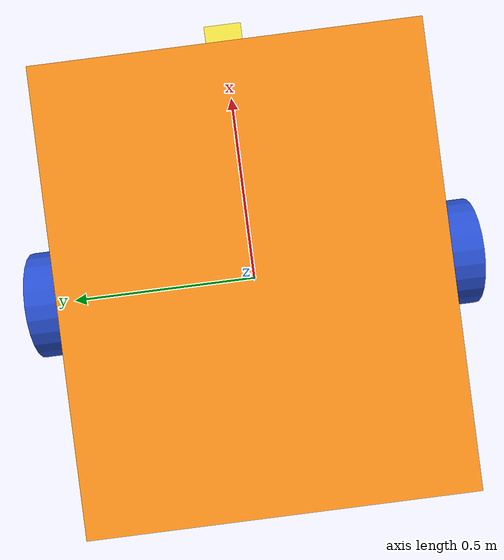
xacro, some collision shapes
<?xml version='1.0'?>

<robot name="myrobot" xmlns:xacro="http://www.ros.org/wiki/xacro">

  <xacro:property name="cameraSize" value="0.05"/>
  <xacro:property name="cameraMass" value="0.1"/>

  <xacro:include filename="$(find sandbox_robot_description)/urdf/mybot.gazebo" />
  <xacro:include filename="$(find sandbox_robot_description)/urdf/materials.xacro" />
  <xacro:include filename="$(find sandbox_robot_description)/urdf/macros.xacro" />

  <link name='base_link'>
    <pose>0 0 0.1 0 0 0</pose>

    <inertial>
      <mass value="15.0"/>
      <origin xyz="0.0 0 0.1" rpy=" 0 0 0"/>
      <inertia ixx="1.99125" ixy="0.0" ixz="0.0" iyy="3.105" iyz="0.0" izz="3.105"/>
    </inertial>

    <laser_retro>200</laser_retro>

    <collision name='collision'>
      <geometry>
        <box size="1.21 1.01 0.36"/>
      </geometry>
    </collision>

    <visual name='base_link_visual'>
      <origin xyz="0 0 0" rpy=" 0 0 0"/>
      <geometry>
        <box size="1.21 1.01 0.36"/>
      </geometry>
    </visual>

  <collision name='caster_collision'>
      <origin xyz="-0.45 0 -0.18" rpy=" 0 0 0"/>
      <geometry>
        <sphere radius="0.05"/>
      </geometry>
    <surface>
        <friction>
          <ode>
            <mu>0</mu>
            <mu2>0</mu2>
            <slip1>1.0</slip1>
            <slip2>1.0</slip2>
          </ode>
        </friction>
    </surface>
  </collision>

    <visual name='caster_visual'>
      <origin xyz="-0.45 0 -0.18" rpy=" 0 0 0"/>
      <geometry>
        <sphere radius="0.05"/>
      </geometry>
    </visual>

  <collision name='caster_front_collision'>
      <origin xyz="0.45 0 -0.18" rpy=" 0 0 0"/>
      <geometry>
        <sphere radius="0.05"/>
      </geometry>
    <surface>
        <friction>
          <ode>
            <mu>0</mu>
            <mu2>0</mu2>
            <slip1>1.0</slip1>
            <slip2>1.0</slip2>
          </ode>
        </friction>
    </surface>
  </collision>

    <visual name='caster_front_visual'>
      <origin xyz="0.45 0 -0.18" rpy=" 0 0 0"/>
      <geometry>
        <sphere radius="0.05"/>
      </geometry>
    </visual>

  </link>

  <link name="left_wheel">
    <!--origin xyz="0.1 0.13 0.1" rpy="0 1.5707 1.5707"/-->
    <collision name="collision">
      <origin xyz="0 0 0" rpy="0 1.5707 1.5707"/>
      <geometry>
        <cylinder radius="0.15" length="0.10"/>
      </geometry>
      <surface>
      <contact>
        <ode>
          <kp>1000000.000000</kp>
          <kd>1.000000</kd>
          <max_vel>100.000000</max_vel>
          <min_depth>0.000000</min_depth>
        </ode>
      </contact>
        <friction>
          <ode>
            <mu>100000</mu>
            <mu2>100000</mu2>
            <slip1>1.0</slip1>
            <slip2>1.0</slip2>
          </ode>
        </friction>
      </surface>
    </collision>
    <visual name="left_wheel_visual">
      <origin xyz="0 0 0" rpy="0 1.5707 1.5707"/>
      <geometry>
        <cylinder radius="0.15" length="0.10"/>
      </geometry>
    </visual>
    <inertial>
      <origin xyz="0 0 0" rpy="0 1.5707 1.5707"/>
      <mass value="1.5"/>
      <inertia ixx="0.0096" ixy="0.0" ixz="0.0" iyy="0.0096" iyz="0.0" izz="0.0168"/>
    </inertial>
  </link>

  <link name="right_wheel">
    <!--origin xyz="0.1 -0.13 0.1" rpy="0 1.5707 1.5707"/-->
    <collision name="collision">
      <origin xyz="0 0 0" rpy="0 1.5707 1.5707"/>
      <geometry>
        <cylinder radius="0.15" length="0.10"/>
      </geometry>
      <surface>
       <contact>
        <ode>
          <kp>1000000.000000</kp>
          <kd>1.000000</kd>
          <max_vel>100.000000</max_vel>
          <min_depth>0.000000</min_depth>
        </ode>
      </contact>
        <friction>
          <ode>
            <mu>100000</mu>
            <mu2>100000</mu2>
            <slip1>1.0</slip1>
            <slip2>1.0</slip2>
          </ode>
        </friction>
      </surface>
    </collision>
    <visual name="right_wheel_visual">
      <origin xyz="0 0 0" rpy="0 1.5707 1.5707"/>
      <geometry>
        <cylinder radius="0.15" length="0.10"/>
      </geometry>
    </visual>
    <inertial>
      <origin xyz="0 0 0" rpy="0 1.5707 1.5707"/>
      <mass value="1.5"/>
      <inertia ixx="0.0096" ixy="0.0" ixz="0.0" iyy="0.0096" iyz="0.0" izz="0.0168"/>
    </inertial>
  </link>

  <joint type="continuous" name="left_wheel_hinge">
    <origin xyz="0 0.57 -0.08" rpy="0 0 0"/>
    <child link="left_wheel"/>
    <parent link="base_link"/>
    <axis xyz="0 1 0" rpy="0 0 0"/>
    <limit effort="100.0" lower="2" upper="0" velocity="10.0"/>
   <dynamics damping="0.3"/>
  </joint>

  <joint type="continuous" name="right_wheel_hinge">
    <origin xyz="0 -0.57 -0.08" rpy="0 0 0"/>
    <!--origin xyz="0.1 -0.13 0" rpy="0 1.5707 1.5707"/-->
    <child link="right_wheel"/>
    <parent link="base_link"/>
    <axis xyz="0 1 0" rpy="0 0 0"/>
    <limit effort="100.0" lower="0" upper="0" velocity="10.0"/>
    <dynamics damping="0.3"/>
  </joint>

  <gazebo reference="right_wheel_hinge">
    <implicitSpringDamper>1</implicitSpringDamper>
    <provideFeedback>true</provideFeedback>
  </gazebo>

  <gazebo reference="left_wheel_hinge">
    <implicitSpringDamper>1</implicitSpringDamper>
    <provideFeedback>true</provideFeedback>
  </gazebo>

    <transmission name="Cassis_Left_wheel_trans">
    <type>transmission_interface/SimpleTransmission</type>
    <joint name="left_wheel_hinge">
      <hardwareInterface>VelocityJointInterface</hardwareInterface>
    </joint>
    <actuator name="motor_left">
      <hardwareInterface>VelocityJointInterface</hardwareInterface>
      <mechanicalReduction>1</mechanicalReduction>
    </actuator>
  </transmission>

  <transmission name="Cassis_Right_wheel_trans">
    <type>transmission_interface/SimpleTransmission</type>
    <joint name="right_wheel_hinge">
      <hardwareInterface>VelocityJointInterface</hardwareInterface>
    </joint>
    <actuator name="motor_right">
      <hardwareInterface>VelocityJointInterface</hardwareInterface>
      <mechanicalReduction>1</mechanicalReduction>
    </actuator>
  </transmission>

  <joint name="hokuyo_joint" type="fixed">
    <axis xyz="0 1 0" />
    <origin xyz=".64 0 0" rpy="0 0 0"/>
    <parent link="base_link"/>
    <child link="hokuyo"/>
  </joint>

  <!-- Hokuyo Laser -->
  <link name="hokuyo">
    <collision>
      <origin xyz="0 0 0" rpy="0 0 0"/>
      <geometry>
    <box size="0.1 0.1 0.1"/>
      </geometry>
    </collision>

    <laser_retro>100</laser_retro>

    <visual>
      <origin xyz="0 0 0" rpy="0 0 0"/>
      <geometry>
        <mesh filename="package://sandbox_robot_description/meshes/hokuyo.dae"/>
      </geometry>
    </visual>

    <inertial>
      <mass value="1e-5" />
      <origin xyz="0 0 0" rpy="0 0 0"/>
      <inertia ixx="1e-6" ixy="0" ixz="0" iyy="1e-6" iyz="0" izz="1e-6" />
    </inertial>
  </link>

</robot>
